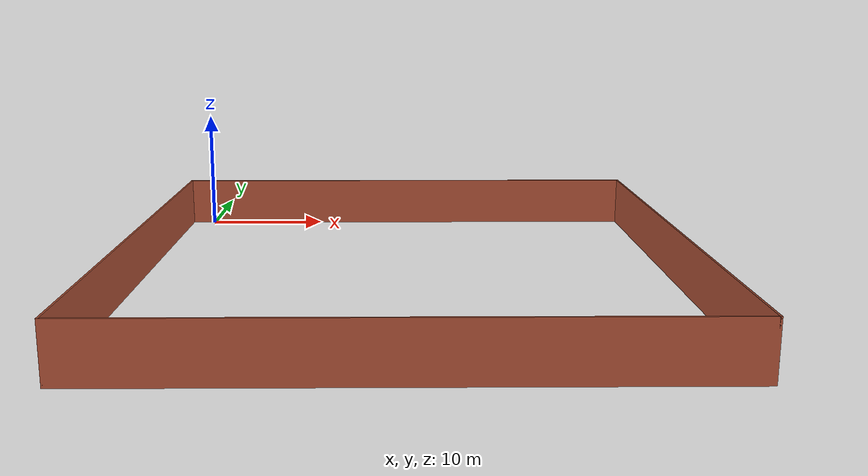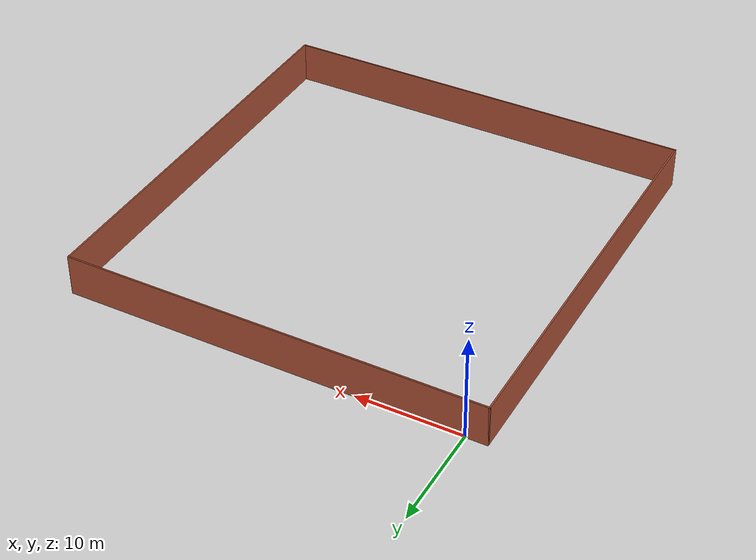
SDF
<?xml version='1.0'?>
<sdf version='1.6'>
  <model name='40x40wall'>
    <pose frame=''>18 -20 0 0 -0 0</pose>
    <link name='Wall_10'>
      <collision name='Wall_10_Collision'>
        <geometry>
          <box>
            <size>40.15 0.15 4</size>
          </box>
        </geometry>
        <pose frame=''>0 0 2 0 -0 0</pose>
      </collision>
      <visual name='Wall_10_Visual'>
        <pose frame=''>0 0 2 0 -0 0</pose>
        <geometry>
          <box>
            <size>40.15 0.15 4</size>
          </box>
        </geometry>
        <material>
          <script>
            <uri>file://media/materials/scripts/gazebo.material</uri>
            <name>Gazebo/Bricks</name>
          </script>
          <ambient>1 1 1 1</ambient>
        </material>
        <meta>
          <layer>0</layer>
        </meta>
      </visual>
      <pose frame=''>1e-06 20 0 0 -0 0</pose>
    </link>
    <link name='Wall_12'>
      <collision name='Wall_12_Collision'>
        <geometry>
          <box>
            <size>40.15 0.15 4</size>
          </box>
        </geometry>
        <pose frame=''>0 0 2 0 -0 0</pose>
      </collision>
      <visual name='Wall_12_Visual'>
        <pose frame=''>0 0 2 0 -0 0</pose>
        <geometry>
          <box>
            <size>40.15 0.15 4</size>
          </box>
        </geometry>
        <material>
          <script>
            <uri>file://media/materials/scripts/gazebo.material</uri>
            <name>Gazebo/Bricks</name>
          </script>
          <ambient>1 1 1 1</ambient>
        </material>
        <meta>
          <layer>0</layer>
        </meta>
      </visual>
      <pose frame=''>-20 1e-06 0 0 -0 -1.5708</pose>
    </link>
    <link name='Wall_14'>
      <collision name='Wall_14_Collision'>
        <geometry>
          <box>
            <size>40.15 0.15 4</size>
          </box>
        </geometry>
        <pose frame=''>0 0 2 0 -0 0</pose>
      </collision>
      <visual name='Wall_14_Visual'>
        <pose frame=''>0 0 2 0 -0 0</pose>
        <geometry>
          <box>
            <size>40.15 0.15 4</size>
          </box>
        </geometry>
        <material>
          <script>
            <uri>file://media/materials/scripts/gazebo.material</uri>
            <name>Gazebo/Bricks</name>
          </script>
          <ambient>1 1 1 1</ambient>
        </material>
        <meta>
          <layer>0</layer>
        </meta>
      </visual>
      <pose frame=''>20 1e-06 0 0 -0 -1.5708</pose>
    </link>
    <link name='Wall_16'>
      <collision name='Wall_16_Collision'>
        <geometry>
          <box>
            <size>40.15 0.15 4</size>
          </box>
        </geometry>
        <pose frame=''>0 0 2 0 -0 0</pose>
      </collision>
      <visual name='Wall_16_Visual'>
        <pose frame=''>0 0 2 0 -0 0</pose>
        <geometry>
          <box>
            <size>40.15 0.15 4</size>
          </box>
        </geometry>
        <material>
          <script>
            <uri>file://media/materials/scripts/gazebo.material</uri>
            <name>Gazebo/Bricks</name>
          </script>
          <ambient>1 1 1 1</ambient>
        </material>
        <meta>
          <layer>0</layer>
        </meta>
      </visual>
      <pose frame=''>1e-06 -20 0 0 -0 0</pose>
    </link>
    <static>1</static>
  </model>
</sdf>
